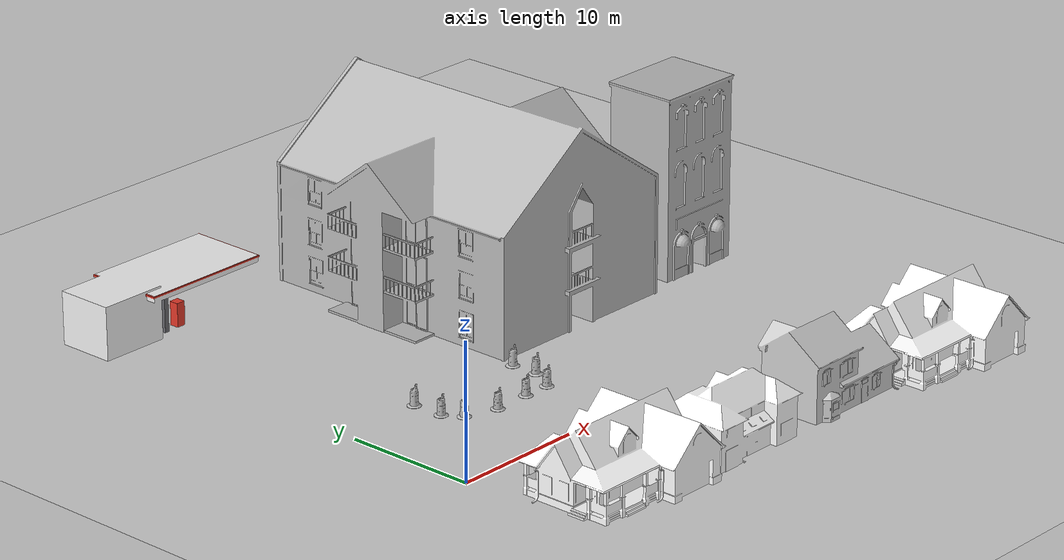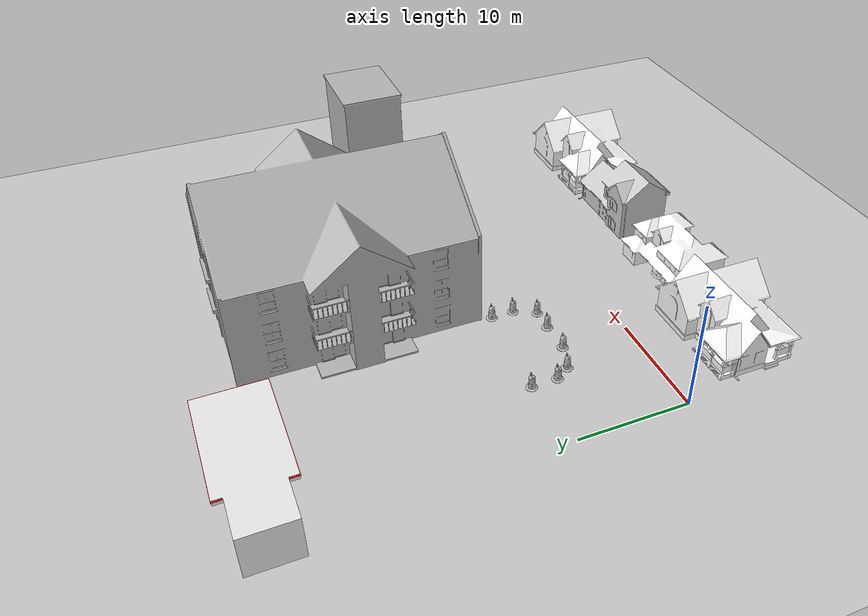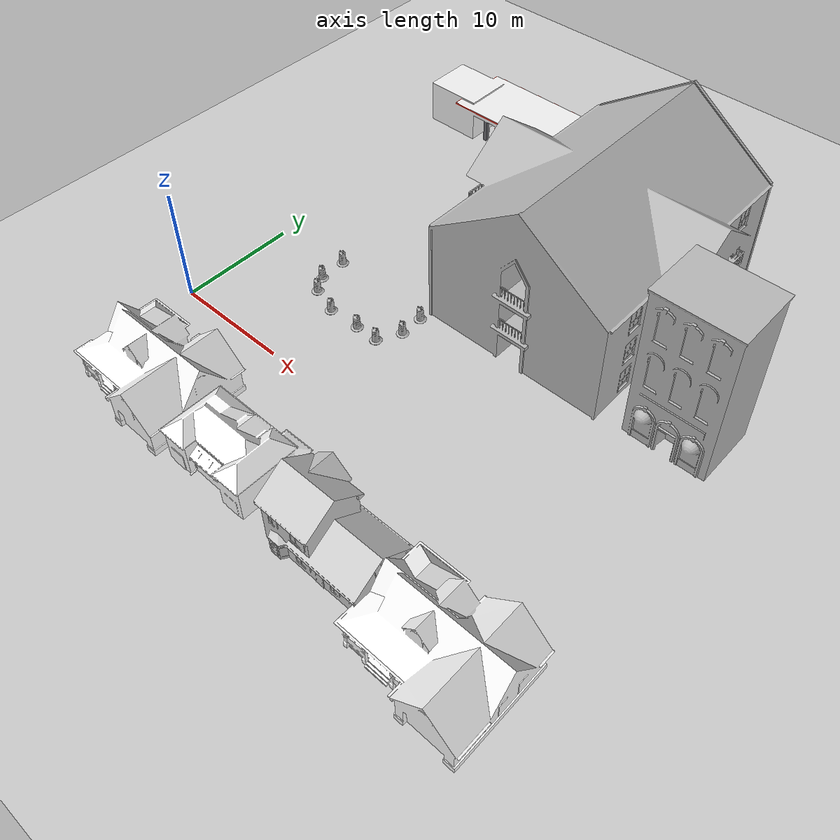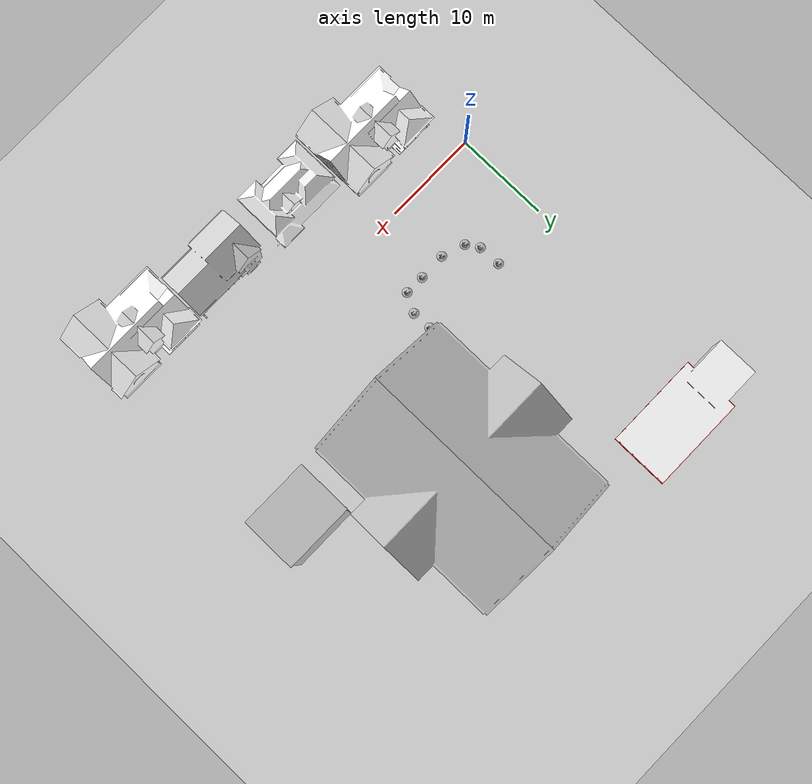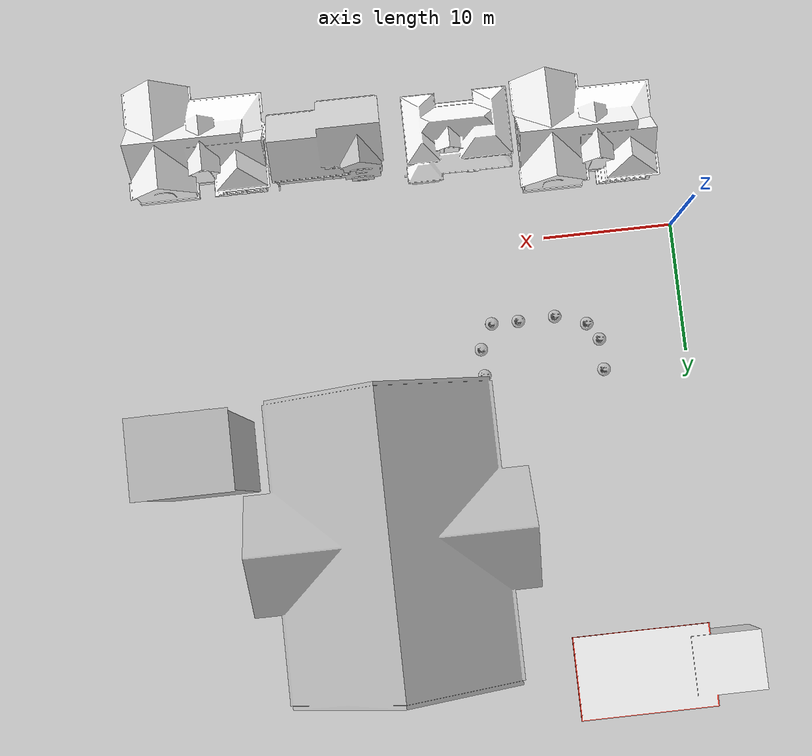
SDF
<sdf version="1.6">
 <world name="default">
  <model name="ground_plane">
   <static>1</static>
   <link name="link">
    <collision name="collision">
     <geometry><plane><normal>0 0 1</normal><size>100 100</size></plane></geometry>
     <surface><friction><ode><mu>100</mu><mu2>50</mu2></ode></friction></surface>
    </collision>
    <visual name="visual">
     <cast_shadows>0</cast_shadows>
     <geometry><plane><normal>0 0 1</normal><size>100 100</size></plane></geometry>
     <material>
      <script><uri>file://media/materials/scripts/gazebo.material</uri><name>Gazebo/Grey</name></script>
     </material>
    </visual>
   </link>
  </model>
  <light name="sun" type="directional">
   <pose>0 0 10 0 -0 0</pose>
   <diffuse>0.8 0.8 0.8 1</diffuse>
   <specular>0.1 0.1 0.1 1</specular>
   <attenuation>
    <range>1000</range>
    <constant>0.9</constant>
    <linear>0.01</linear>
    <quadratic>0.001</quadratic>
   </attenuation>
   <direction>-0.5 0.5 -1</direction>
  </light>
  <gravity>0 0 -9.8</gravity>
  <magnetic_field>6e-06 2.3e-05 -4.2e-05</magnetic_field>
  <atmosphere type="adiabatic"/>
  <physics name="default_physics" default="0" type="ode">
   <max_step_size>0.001</max_step_size>
   <real_time_factor>1</real_time_factor>
   <real_time_update_rate>1000</real_time_update_rate>
  </physics>
  <scene><ambient>0.4 0.4 0.4 1</ambient><background>0.7 0.7 0.7 1</background><shadows>1</shadows></scene>
  <spherical_coordinates>
   <surface_model>EARTH_WGS84</surface_model>
   <latitude_deg>0</latitude_deg>
   <longitude_deg>0</longitude_deg>
   <elevation>0</elevation>
   <heading_deg>0</heading_deg>
  </spherical_coordinates>
  <model name="House 1">
   <static>1</static>
   <link name="link">
    <collision name="collision">
     <geometry><mesh><uri>model://house_1/meshes/house_1.dae</uri><scale>1 1 1</scale></mesh></geometry>
    </collision>
    <visual name="visual">
     <geometry><mesh><uri>model://house_1/meshes/house_1.dae</uri><scale>1 1 1</scale></mesh></geometry>
     <material>
      <script>
       <uri>model://house_1/materials/scripts</uri>
       <uri>model://house_1/materials/textures</uri>
       <name>House_1/Diffuse</name>
      </script>
      <shader type="normal_map_object_space"><normal_map>House_1_Normal.png</normal_map></shader>
     </material>
    </visual>
   </link>
   <pose>6.32349 -7.58662 0 0 -0 0</pose>
  </model>
  <model name="House 2">
   <static>1</static>
   <link name="link">
    <collision name="collision">
     <geometry><mesh><uri>model://house_2/meshes/house_2.dae</uri><scale>1 1 1</scale></mesh></geometry>
    </collision>
    <visual name="visual">
     <geometry><mesh><uri>model://house_2/meshes/house_2.dae</uri><scale>1 1 1</scale></mesh></geometry>
     <material>
      <script>
       <uri>model://house_2/materials/scripts</uri>
       <uri>model://house_2/materials/textures</uri>
       <name>House_2/Diffuse</name>
      </script>
     </material>
    </visual>
   </link>
   <pose>15.3304 -8.84286 0 0 -0 0</pose>
  </model>
  <model name="House 3">
   <static>1</static>
   <link name="link">
    <collision name="collision">
     <geometry><mesh><uri>model://house_3/meshes/house_3.dae</uri><scale>1 1 1</scale></mesh></geometry>
    </collision>
    <visual name="visual">
     <geometry><mesh><uri>model://house_3/meshes/house_3.dae</uri><scale>1 1 1</scale></mesh></geometry>
     <material>
      <script>
       <uri>model://house_3/materials/scripts</uri>
       <uri>model://house_3/materials/textures</uri>
       <name>House_3/Diffuse</name>
      </script>
     </material>
    </visual>
   </link>
   <pose>26.5548 -8.88395 0 0 -0 0</pose>
  </model>
  <model name="Gas Station">
   <static>1</static>
   <link name="link">
    <collision name="collision">
     <geometry><mesh><uri>model://gas_station/meshes/gas_station.dae</uri><scale>1 1 1</scale></mesh></geometry>
    </collision>
    <visual name="visual">
     <geometry><mesh><uri>model://gas_station/meshes/gas_station.dae</uri><scale>1 1 1</scale></mesh></geometry>
     <material>
      <script>
       <uri>model://gas_station/materials/scripts</uri>
       <uri>model://gas_station/materials/textures</uri>
       <name>GasStation/Diffuse</name>
      </script>
      <shader type="normal_map_object_space"><normal_map>GasStation_Normal.png</normal_map></shader>
     </material>
    </visual>
   </link>
   <pose>4.2775 33.6828 0 0 -0 0</pose>
  </model>
  <model name="apartment">
   <static>1</static>
   <link name="link">
    <collision name="collision">
     <geometry><mesh><uri>model://apartment/meshes/apartment.dae</uri><scale>1 1 1</scale></mesh></geometry>
    </collision>
    <visual name="visual">
     <geometry><mesh><uri>model://apartment/meshes/apartment.dae</uri><scale>1 1 1</scale></mesh></geometry>
    </visual>
   </link>
   <pose>24.0246 22.0671 0 0 -0 0</pose>
  </model>
  <model name="law_office">
   <static>1</static>
   <link name="link">
    <collision name="collision">
     <pose>0 0 6.96244 0 -0 0</pose>
     <geometry><box><size>6.84401 5.43165 13.9249</size></box></geometry>
    </collision>
    <visual name="visual">
     <geometry><mesh><uri>model://law_office/meshes/law_office.dae</uri><scale>1 1 1</scale></mesh></geometry>
    </visual>
   </link>
   <pose>37.4873 14.6607 0 0 -0 0</pose>
  </model>
  <model name="House 1_0">
   <static>1</static>
   <link name="link">
    <collision name="collision">
     <geometry><mesh><uri>model://house_1/meshes/house_1.dae</uri><scale>1 1 1</scale></mesh></geometry>
    </collision>
    <visual name="visual">
     <geometry><mesh><uri>model://house_1/meshes/house_1.dae</uri><scale>1 1 1</scale></mesh></geometry>
     <material>
      <script>
       <uri>model://house_1/materials/scripts</uri>
       <uri>model://house_1/materials/textures</uri>
       <name>House_1/Diffuse</name>
      </script>
      <shader type="normal_map_object_space"><normal_map>House_1_Normal.png</normal_map></shader>
     </material>
    </visual>
   </link>
   <pose>36.3209 -9.83359 0 0 -0 0</pose>
  </model>
  <model name="Construction Barrel">
   <static>1</static>
   <link name="link">
    <inertial>
     <pose>0 0 0.4 0 -0 0</pose>
     <mass>500</mass>
     <inertia><ixx>51.2096</ixx><iyy>51.2096</iyy><izz>25</izz><ixy>0</ixy><ixz>0</ixz><iyz>0</iyz></inertia>
    </inertial>
    <collision name="collision">
     <geometry>
      <mesh><uri>model://construction_barrel/meshes/construction_barrel.dae</uri><scale>1 1 1</scale></mesh>
     </geometry>
    </collision>
    <visual name="visual">
     <geometry>
      <mesh><uri>model://construction_barrel/meshes/construction_barrel.dae</uri><scale>1 1 1</scale></mesh>
     </geometry>
    </visual>
   </link>
   <pose>6.60772 8.39753 0 0 -0 0</pose>
  </model>
  <model name="Construction Barrel_0">
   <static>1</static>
   <link name="link">
    <inertial>
     <pose>0 0 0.4 0 -0 0</pose>
     <mass>500</mass>
     <inertia><ixx>51.2096</ixx><iyy>51.2096</iyy><izz>25</izz><ixy>0</ixy><ixz>0</ixz><iyz>0</iyz></inertia>
    </inertial>
    <collision name="collision">
     <geometry>
      <mesh><uri>model://construction_barrel/meshes/construction_barrel.dae</uri><scale>1 1 1</scale></mesh>
     </geometry>
    </collision>
    <visual name="visual">
     <geometry>
      <mesh><uri>model://construction_barrel/meshes/construction_barrel.dae</uri><scale>1 1 1</scale></mesh>
     </geometry>
    </visual>
   </link>
   <pose>7.45565 7.08417 0 0 -0 0</pose>
  </model>
  <model name="Construction Barrel_1">
   <static>1</static>
   <link name="link">
    <inertial>
     <pose>0 0 0.4 0 -0 0</pose>
     <mass>500</mass>
     <inertia><ixx>51.2096</ixx><iyy>51.2096</iyy><izz>25</izz><ixy>0</ixy><ixz>0</ixz><iyz>0</iyz></inertia>
    </inertial>
    <collision name="collision">
     <geometry>
      <mesh><uri>model://construction_barrel/meshes/construction_barrel.dae</uri><scale>1 1 1</scale></mesh>
     </geometry>
    </collision>
    <visual name="visual">
     <geometry>
      <mesh><uri>model://construction_barrel/meshes/construction_barrel.dae</uri><scale>1 1 1</scale></mesh>
     </geometry>
    </visual>
   </link>
   <pose>9.87829 6.25933 0 0 -0 0</pose>
  </model>
  <model name="Construction Barrel_2">
   <static>1</static>
   <link name="link">
    <inertial>
     <pose>0 0 0.4 0 -0 0</pose>
     <mass>500</mass>
     <inertia><ixx>51.2096</ixx><iyy>51.2096</iyy><izz>25</izz><ixy>0</ixy><ixz>0</ixz><iyz>0</iyz></inertia>
    </inertial>
    <collision name="collision">
     <geometry>
      <mesh><uri>model://construction_barrel/meshes/construction_barrel.dae</uri><scale>1 1 1</scale></mesh>
     </geometry>
    </collision>
    <visual name="visual">
     <geometry>
      <mesh><uri>model://construction_barrel/meshes/construction_barrel.dae</uri><scale>1 1 1</scale></mesh>
     </geometry>
    </visual>
   </link>
   <pose>12.7483 6.32843 0 0 -0 0</pose>
  </model>
  <model name="Construction Barrel_3">
   <static>1</static>
   <link name="link">
    <inertial>
     <pose>0 0 0.4 0 -0 0</pose>
     <mass>500</mass>
     <inertia><ixx>51.2096</ixx><iyy>51.2096</iyy><izz>25</izz><ixy>0</ixy><ixz>0</ixz><iyz>0</iyz></inertia>
    </inertial>
    <collision name="collision">
     <geometry>
      <mesh><uri>model://construction_barrel/meshes/construction_barrel.dae</uri><scale>1 1 1</scale></mesh>
     </geometry>
    </collision>
    <visual name="visual">
     <geometry>
      <mesh><uri>model://construction_barrel/meshes/construction_barrel.dae</uri><scale>1 1 1</scale></mesh>
     </geometry>
    </visual>
   </link>
   <pose>14.8378 6.30383 0 0 -0 0</pose>
  </model>
  <model name="Construction Barrel_4">
   <static>1</static>
   <link name="link">
    <inertial>
     <pose>0 0 0.4 0 -0 0</pose>
     <mass>500</mass>
     <inertia><ixx>51.2096</ixx><iyy>51.2096</iyy><izz>25</izz><ixy>0</ixy><ixz>0</ixz><iyz>0</iyz></inertia>
    </inertial>
    <collision name="collision">
     <geometry>
      <mesh><uri>model://construction_barrel/meshes/construction_barrel.dae</uri><scale>1 1 1</scale></mesh>
     </geometry>
    </collision>
    <visual name="visual">
     <geometry>
      <mesh><uri>model://construction_barrel/meshes/construction_barrel.dae</uri><scale>1 1 1</scale></mesh>
     </geometry>
    </visual>
   </link>
   <pose>15.8728 8.23156 0 0 -0 0</pose>
  </model>
  <model name="Construction Barrel_5">
   <static>1</static>
   <link name="link">
    <inertial>
     <pose>0 0 0.4 0 -0 0</pose>
     <mass>500</mass>
     <inertia><ixx>51.2096</ixx><iyy>51.2096</iyy><izz>25</izz><ixy>0</ixy><ixz>0</ixz><iyz>0</iyz></inertia>
    </inertial>
    <collision name="collision">
     <geometry>
      <mesh><uri>model://construction_barrel/meshes/construction_barrel.dae</uri><scale>1 1 1</scale></mesh>
     </geometry>
    </collision>
    <visual name="visual">
     <geometry>
      <mesh><uri>model://construction_barrel/meshes/construction_barrel.dae</uri><scale>1 1 1</scale></mesh>
     </geometry>
    </visual>
   </link>
   <pose>6.53629 10.797 0 0 -0 0</pose>
  </model>
  <model name="Construction Barrel_6">
   <static>1</static>
   <link name="link">
    <inertial>
     <pose>0 0 0.4 0 -0 0</pose>
     <mass>500</mass>
     <inertia><ixx>51.2096</ixx><iyy>51.2096</iyy><izz>25</izz><ixy>0</ixy><ixz>0</ixz><iyz>0</iyz></inertia>
    </inertial>
    <collision name="collision">
     <geometry>
      <mesh><uri>model://construction_barrel/meshes/construction_barrel.dae</uri><scale>1 1 1</scale></mesh>
     </geometry>
    </collision>
    <visual name="visual">
     <geometry>
      <mesh><uri>model://construction_barrel/meshes/construction_barrel.dae</uri><scale>1 1 1</scale></mesh>
     </geometry>
    </visual>
   </link>
   <pose>15.8328 10.3121 0 0 -0 0</pose>
  </model>
 </world>
</sdf>
